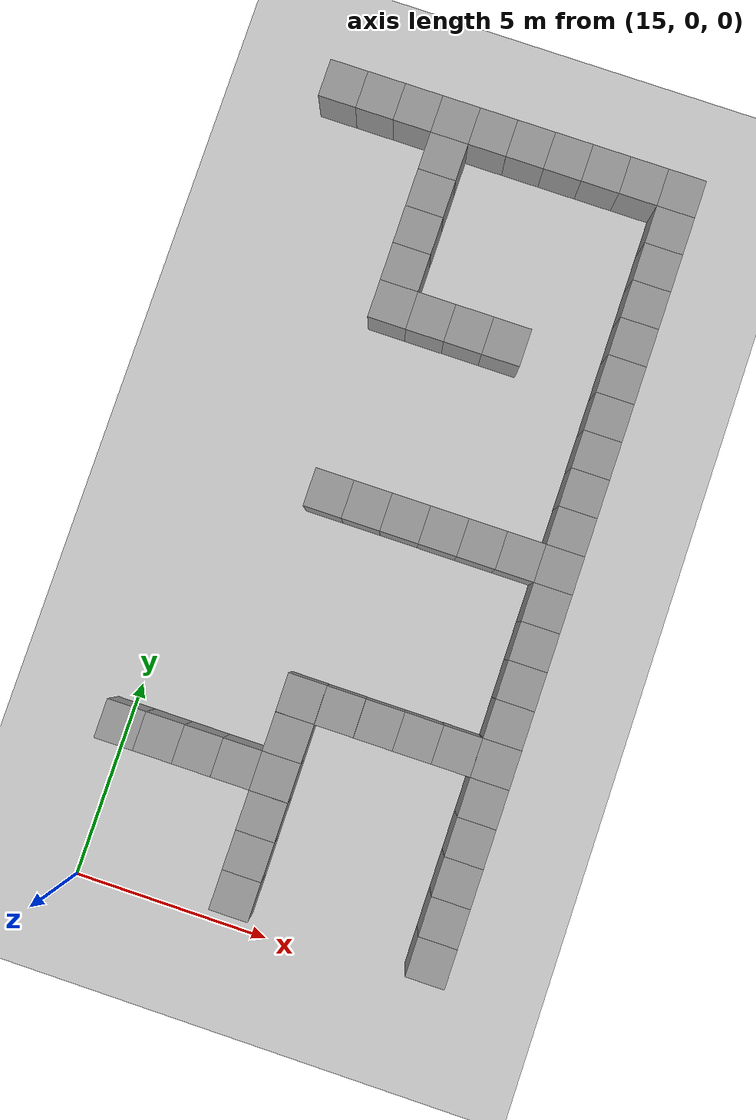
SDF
<sdf version="1.4">
 <world name="default">
  <model name="ground_plane">
   <static>1</static>
   <link name="link">
    <collision name="collision">
     <geometry><plane><normal>0 0 1</normal><size>100 100</size></plane></geometry>
     <surface><friction><ode><mu>100</mu><mu2>50</mu2></ode></friction></surface>
    </collision>
    <visual name="visual">
     <cast_shadows>0</cast_shadows>
     <geometry><plane><normal>0 0 1</normal><size>100 100</size></plane></geometry>
     <material>
      <script><uri>file://media/materials/scripts/gazebo.material</uri><name>Gazebo/Grey</name></script>
     </material>
    </visual>
    <velocity_decay><linear>0</linear><angular>0</angular></velocity_decay>
   </link>
  </model>
  <model name="unit_box_134">
   <pose>15 21 0.5 0 -0 1e-06</pose>
   <static>1</static>
   <link name="link">
    <inertial>
     <mass>1</mass>
     <inertia><ixx>1</ixx><ixy>0</ixy><ixz>0</ixz><iyy>1</iyy><iyz>0</iyz><izz>1</izz></inertia>
    </inertial>
    <collision name="collision"><geometry><box><size>1 1 2</size></box></geometry></collision>
    <visual name="visual">
     <geometry><box><size>1 1 2</size></box></geometry>
     <material>
      <script><uri>file://media/materials/scripts/gazebo.material</uri><name>Gazebo/Grey</name></script>
     </material>
    </visual>
    <velocity_decay><linear>0</linear><angular>0</angular></velocity_decay>
   </link>
   <static>0</static>
  </model>
  <model name="unit_box_135">
   <pose>16 21 0.5 0 -0 1e-06</pose>
   <static>1</static>
   <link name="link">
    <inertial>
     <mass>1</mass>
     <inertia><ixx>1</ixx><ixy>0</ixy><ixz>0</ixz><iyy>1</iyy><iyz>0</iyz><izz>1</izz></inertia>
    </inertial>
    <collision name="collision"><geometry><box><size>1 1 2</size></box></geometry></collision>
    <visual name="visual">
     <geometry><box><size>1 1 2</size></box></geometry>
     <material>
      <script><uri>file://media/materials/scripts/gazebo.material</uri><name>Gazebo/Grey</name></script>
     </material>
    </visual>
    <velocity_decay><linear>0</linear><angular>0</angular></velocity_decay>
   </link>
   <static>0</static>
  </model>
  <model name="unit_box_136">
   <pose>17 21 0.5 0 -0 3e-06</pose>
   <static>1</static>
   <link name="link">
    <inertial>
     <mass>1</mass>
     <inertia><ixx>1</ixx><ixy>0</ixy><ixz>0</ixz><iyy>1</iyy><iyz>0</iyz><izz>1</izz></inertia>
    </inertial>
    <collision name="collision"><geometry><box><size>1 1 2</size></box></geometry></collision>
    <visual name="visual">
     <geometry><box><size>1 1 2</size></box></geometry>
     <material>
      <script><uri>file://media/materials/scripts/gazebo.material</uri><name>Gazebo/Grey</name></script>
     </material>
    </visual>
    <velocity_decay><linear>0</linear><angular>0</angular></velocity_decay>
   </link>
   <static>0</static>
  </model>
  <model name="unit_box_137">
   <pose>18 21 0.5 0 -0 3e-06</pose>
   <static>1</static>
   <link name="link">
    <inertial>
     <mass>1</mass>
     <inertia><ixx>1</ixx><ixy>0</ixy><ixz>0</ixz><iyy>1</iyy><iyz>0</iyz><izz>1</izz></inertia>
    </inertial>
    <collision name="collision"><geometry><box><size>1 1 2</size></box></geometry></collision>
    <visual name="visual">
     <geometry><box><size>1 1 2</size></box></geometry>
     <material>
      <script><uri>file://media/materials/scripts/gazebo.material</uri><name>Gazebo/Grey</name></script>
     </material>
    </visual>
    <velocity_decay><linear>0</linear><angular>0</angular></velocity_decay>
   </link>
   <static>0</static>
  </model>
  <model name="unit_box_138">
   <pose>18 20 0.5 0 -0 5e-06</pose>
   <static>1</static>
   <link name="link">
    <inertial>
     <mass>1</mass>
     <inertia><ixx>1</ixx><ixy>0</ixy><ixz>0</ixz><iyy>1</iyy><iyz>0</iyz><izz>1</izz></inertia>
    </inertial>
    <collision name="collision"><geometry><box><size>1 1 2</size></box></geometry></collision>
    <visual name="visual">
     <geometry><box><size>1 1 2</size></box></geometry>
     <material>
      <script><uri>file://media/materials/scripts/gazebo.material</uri><name>Gazebo/Grey</name></script>
     </material>
    </visual>
    <velocity_decay><linear>0</linear><angular>0</angular></velocity_decay>
   </link>
   <static>0</static>
  </model>
  <model name="unit_box_139">
   <pose>18 19 0.5 0 -0 3e-06</pose>
   <static>1</static>
   <link name="link">
    <inertial>
     <mass>1</mass>
     <inertia><ixx>1</ixx><ixy>0</ixy><ixz>0</ixz><iyy>1</iyy><iyz>0</iyz><izz>1</izz></inertia>
    </inertial>
    <collision name="collision"><geometry><box><size>1 1 2</size></box></geometry></collision>
    <visual name="visual">
     <geometry><box><size>1 1 2</size></box></geometry>
     <material>
      <script><uri>file://media/materials/scripts/gazebo.material</uri><name>Gazebo/Grey</name></script>
     </material>
    </visual>
    <velocity_decay><linear>0</linear><angular>0</angular></velocity_decay>
   </link>
   <static>0</static>
  </model>
  <model name="unit_box_140">
   <pose>18 18 0.5 0 -0 2e-06</pose>
   <static>1</static>
   <link name="link">
    <inertial>
     <mass>1</mass>
     <inertia><ixx>1</ixx><ixy>0</ixy><ixz>0</ixz><iyy>1</iyy><iyz>0</iyz><izz>1</izz></inertia>
    </inertial>
    <collision name="collision"><geometry><box><size>1 1 2</size></box></geometry></collision>
    <visual name="visual">
     <geometry><box><size>1 1 2</size></box></geometry>
     <material>
      <script><uri>file://media/materials/scripts/gazebo.material</uri><name>Gazebo/Grey</name></script>
     </material>
    </visual>
    <velocity_decay><linear>0</linear><angular>0</angular></velocity_decay>
   </link>
   <static>0</static>
  </model>
  <model name="unit_box_141">
   <pose>18 17 0.5 0 -0 1e-06</pose>
   <static>1</static>
   <link name="link">
    <inertial>
     <mass>1</mass>
     <inertia><ixx>1</ixx><ixy>0</ixy><ixz>0</ixz><iyy>1</iyy><iyz>0</iyz><izz>1</izz></inertia>
    </inertial>
    <collision name="collision"><geometry><box><size>1 1 2</size></box></geometry></collision>
    <visual name="visual">
     <geometry><box><size>1 1 2</size></box></geometry>
     <material>
      <script><uri>file://media/materials/scripts/gazebo.material</uri><name>Gazebo/Grey</name></script>
     </material>
    </visual>
    <velocity_decay><linear>0</linear><angular>0</angular></velocity_decay>
   </link>
   <static>0</static>
  </model>
  <model name="unit_box_142">
   <pose>18 16 0.5 0 -0 1e-06</pose>
   <static>1</static>
   <link name="link">
    <inertial>
     <mass>1</mass>
     <inertia><ixx>1</ixx><ixy>0</ixy><ixz>0</ixz><iyy>1</iyy><iyz>0</iyz><izz>1</izz></inertia>
    </inertial>
    <collision name="collision"><geometry><box><size>1 1 2</size></box></geometry></collision>
    <visual name="visual">
     <geometry><box><size>1 1 2</size></box></geometry>
     <material>
      <script><uri>file://media/materials/scripts/gazebo.material</uri><name>Gazebo/Grey</name></script>
     </material>
    </visual>
    <velocity_decay><linear>0</linear><angular>0</angular></velocity_decay>
   </link>
   <static>0</static>
  </model>
  <model name="unit_box_143">
   <pose>19 16 0.5 0 -0 1e-06</pose>
   <static>1</static>
   <link name="link">
    <inertial>
     <mass>1</mass>
     <inertia><ixx>1</ixx><ixy>0</ixy><ixz>0</ixz><iyy>1</iyy><iyz>0</iyz><izz>1</izz></inertia>
    </inertial>
    <collision name="collision"><geometry><box><size>1 1 2</size></box></geometry></collision>
    <visual name="visual">
     <geometry><box><size>1 1 2</size></box></geometry>
     <material>
      <script><uri>file://media/materials/scripts/gazebo.material</uri><name>Gazebo/Grey</name></script>
     </material>
    </visual>
    <velocity_decay><linear>0</linear><angular>0</angular></velocity_decay>
   </link>
   <static>0</static>
  </model>
  <model name="unit_box_144">
   <pose>20 16 0.5 0 0 -1e-06</pose>
   <static>1</static>
   <link name="link">
    <inertial>
     <mass>1</mass>
     <inertia><ixx>1</ixx><ixy>0</ixy><ixz>0</ixz><iyy>1</iyy><iyz>0</iyz><izz>1</izz></inertia>
    </inertial>
    <collision name="collision"><geometry><box><size>1 1 2</size></box></geometry></collision>
    <visual name="visual">
     <geometry><box><size>1 1 2</size></box></geometry>
     <material>
      <script><uri>file://media/materials/scripts/gazebo.material</uri><name>Gazebo/Grey</name></script>
     </material>
    </visual>
    <velocity_decay><linear>0</linear><angular>0</angular></velocity_decay>
   </link>
   <static>0</static>
  </model>
  <model name="unit_box_145">
   <pose>21 16 0.5 0 0 -1e-06</pose>
   <static>1</static>
   <link name="link">
    <inertial>
     <mass>1</mass>
     <inertia><ixx>1</ixx><ixy>0</ixy><ixz>0</ixz><iyy>1</iyy><iyz>0</iyz><izz>1</izz></inertia>
    </inertial>
    <collision name="collision"><geometry><box><size>1 1 2</size></box></geometry></collision>
    <visual name="visual">
     <geometry><box><size>1 1 2</size></box></geometry>
     <material>
      <script><uri>file://media/materials/scripts/gazebo.material</uri><name>Gazebo/Grey</name></script>
     </material>
    </visual>
    <velocity_decay><linear>0</linear><angular>0</angular></velocity_decay>
   </link>
   <static>0</static>
  </model>
  <model name="unit_box_146">
   <pose>19 21 0.5 0 -0 3e-06</pose>
   <static>1</static>
   <link name="link">
    <inertial>
     <mass>1</mass>
     <inertia><ixx>1</ixx><ixy>0</ixy><ixz>0</ixz><iyy>1</iyy><iyz>0</iyz><izz>1</izz></inertia>
    </inertial>
    <collision name="collision"><geometry><box><size>1 1 2</size></box></geometry></collision>
    <visual name="visual">
     <geometry><box><size>1 1 2</size></box></geometry>
     <material>
      <script><uri>file://media/materials/scripts/gazebo.material</uri><name>Gazebo/Grey</name></script>
     </material>
    </visual>
    <velocity_decay><linear>0</linear><angular>0</angular></velocity_decay>
   </link>
   <static>0</static>
  </model>
  <model name="unit_box_147">
   <pose>20.0003 21 0.5 0 -0 1.4e-05</pose>
   <static>1</static>
   <link name="link">
    <inertial>
     <mass>1</mass>
     <inertia><ixx>1</ixx><ixy>0</ixy><ixz>0</ixz><iyy>1</iyy><iyz>0</iyz><izz>1</izz></inertia>
    </inertial>
    <collision name="collision"><geometry><box><size>1 1 2</size></box></geometry></collision>
    <visual name="visual">
     <geometry><box><size>1 1 2</size></box></geometry>
     <material>
      <script><uri>file://media/materials/scripts/gazebo.material</uri><name>Gazebo/Grey</name></script>
     </material>
    </visual>
    <velocity_decay><linear>0</linear><angular>0</angular></velocity_decay>
   </link>
   <static>0</static>
  </model>
  <model name="unit_box_148">
   <pose>21.0003 21 0.5 0 -0 3.3e-05</pose>
   <static>1</static>
   <link name="link">
    <inertial>
     <mass>1</mass>
     <inertia><ixx>1</ixx><ixy>0</ixy><ixz>0</ixz><iyy>1</iyy><iyz>0</iyz><izz>1</izz></inertia>
    </inertial>
    <collision name="collision"><geometry><box><size>1 1 2</size></box></geometry></collision>
    <visual name="visual">
     <geometry><box><size>1 1 2</size></box></geometry>
     <material>
      <script><uri>file://media/materials/scripts/gazebo.material</uri><name>Gazebo/Grey</name></script>
     </material>
    </visual>
    <velocity_decay><linear>0</linear><angular>0</angular></velocity_decay>
   </link>
   <static>0</static>
  </model>
  <model name="unit_box_150">
   <pose>22.0003 21.0001 0.5 0 -0 7.3e-05</pose>
   <static>1</static>
   <link name="link">
    <inertial>
     <mass>1</mass>
     <inertia><ixx>1</ixx><ixy>0</ixy><ixz>0</ixz><iyy>1</iyy><iyz>0</iyz><izz>1</izz></inertia>
    </inertial>
    <collision name="collision"><geometry><box><size>1 1 2</size></box></geometry></collision>
    <visual name="visual">
     <geometry><box><size>1 1 2</size></box></geometry>
     <material>
      <script><uri>file://media/materials/scripts/gazebo.material</uri><name>Gazebo/Grey</name></script>
     </material>
    </visual>
    <velocity_decay><linear>0</linear><angular>0</angular></velocity_decay>
   </link>
   <static>0</static>
  </model>
  <model name="unit_box_151">
   <pose>23.0004 21.0004 0.5 0 -0 0.000111</pose>
   <static>1</static>
   <link name="link">
    <inertial>
     <mass>1</mass>
     <inertia><ixx>1</ixx><ixy>0</ixy><ixz>0</ixz><iyy>1</iyy><iyz>0</iyz><izz>1</izz></inertia>
    </inertial>
    <collision name="collision"><geometry><box><size>1 1 2</size></box></geometry></collision>
    <visual name="visual">
     <geometry><box><size>1 1 2</size></box></geometry>
     <material>
      <script><uri>file://media/materials/scripts/gazebo.material</uri><name>Gazebo/Grey</name></script>
     </material>
    </visual>
    <velocity_decay><linear>0</linear><angular>0</angular></velocity_decay>
   </link>
   <static>0</static>
  </model>
  <model name="unit_box_152">
   <pose>24.0004 21.0005 0.5 0 -0 4.7e-05</pose>
   <static>1</static>
   <link name="link">
    <inertial>
     <mass>1</mass>
     <inertia><ixx>1</ixx><ixy>0</ixy><ixz>0</ixz><iyy>1</iyy><iyz>0</iyz><izz>1</izz></inertia>
    </inertial>
    <collision name="collision"><geometry><box><size>1 1 2</size></box></geometry></collision>
    <visual name="visual">
     <geometry><box><size>1 1 2</size></box></geometry>
     <material>
      <script><uri>file://media/materials/scripts/gazebo.material</uri><name>Gazebo/Grey</name></script>
     </material>
    </visual>
    <velocity_decay><linear>0</linear><angular>0</angular></velocity_decay>
   </link>
   <static>0</static>
  </model>
  <model name="unit_box_153">
   <pose>24.0001 20.0005 0.5 0 -0 2.5e-05</pose>
   <static>1</static>
   <link name="link">
    <inertial>
     <mass>1</mass>
     <inertia><ixx>1</ixx><ixy>0</ixy><ixz>0</ixz><iyy>1</iyy><iyz>0</iyz><izz>1</izz></inertia>
    </inertial>
    <collision name="collision"><geometry><box><size>1 1 2</size></box></geometry></collision>
    <visual name="visual">
     <geometry><box><size>1 1 2</size></box></geometry>
     <material>
      <script><uri>file://media/materials/scripts/gazebo.material</uri><name>Gazebo/Grey</name></script>
     </material>
    </visual>
    <velocity_decay><linear>0</linear><angular>0</angular></velocity_decay>
   </link>
   <static>0</static>
  </model>
  <model name="unit_box_154">
   <pose>24.0001 19.0005 0.5 0 -0 1.7e-05</pose>
   <static>1</static>
   <link name="link">
    <inertial>
     <mass>1</mass>
     <inertia><ixx>1</ixx><ixy>0</ixy><ixz>0</ixz><iyy>1</iyy><iyz>0</iyz><izz>1</izz></inertia>
    </inertial>
    <collision name="collision"><geometry><box><size>1 1 2</size></box></geometry></collision>
    <visual name="visual">
     <geometry><box><size>1 1 2</size></box></geometry>
     <material>
      <script><uri>file://media/materials/scripts/gazebo.material</uri><name>Gazebo/Grey</name></script>
     </material>
    </visual>
    <velocity_decay><linear>0</linear><angular>0</angular></velocity_decay>
   </link>
   <static>0</static>
  </model>
  <model name="unit_box_155">
   <pose>24.0001 18.0005 0.5 0 -0 1.3e-05</pose>
   <static>1</static>
   <link name="link">
    <inertial>
     <mass>1</mass>
     <inertia><ixx>1</ixx><ixy>0</ixy><ixz>0</ixz><iyy>1</iyy><iyz>0</iyz><izz>1</izz></inertia>
    </inertial>
    <collision name="collision"><geometry><box><size>1 1 2</size></box></geometry></collision>
    <visual name="visual">
     <geometry><box><size>1 1 2</size></box></geometry>
     <material>
      <script><uri>file://media/materials/scripts/gazebo.material</uri><name>Gazebo/Grey</name></script>
     </material>
    </visual>
    <velocity_decay><linear>0</linear><angular>0</angular></velocity_decay>
   </link>
   <static>0</static>
  </model>
  <model name="unit_box_156">
   <pose>24.0001 17.0005 0.5 0 -0 1.4e-05</pose>
   <static>1</static>
   <link name="link">
    <inertial>
     <mass>1</mass>
     <inertia><ixx>1</ixx><ixy>0</ixy><ixz>0</ixz><iyy>1</iyy><iyz>0</iyz><izz>1</izz></inertia>
    </inertial>
    <collision name="collision"><geometry><box><size>1 1 2</size></box></geometry></collision>
    <visual name="visual">
     <geometry><box><size>1 1 2</size></box></geometry>
     <material>
      <script><uri>file://media/materials/scripts/gazebo.material</uri><name>Gazebo/Grey</name></script>
     </material>
    </visual>
    <velocity_decay><linear>0</linear><angular>0</angular></velocity_decay>
   </link>
   <static>0</static>
  </model>
  <model name="unit_box_157">
   <pose>24.0002 16.0005 0.5 0 -0 1.5e-05</pose>
   <static>1</static>
   <link name="link">
    <inertial>
     <mass>1</mass>
     <inertia><ixx>1</ixx><ixy>0</ixy><ixz>0</ixz><iyy>1</iyy><iyz>0</iyz><izz>1</izz></inertia>
    </inertial>
    <collision name="collision"><geometry><box><size>1 1 2</size></box></geometry></collision>
    <visual name="visual">
     <geometry><box><size>1 1 2</size></box></geometry>
     <material>
      <script><uri>file://media/materials/scripts/gazebo.material</uri><name>Gazebo/Grey</name></script>
     </material>
    </visual>
    <velocity_decay><linear>0</linear><angular>0</angular></velocity_decay>
   </link>
   <static>0</static>
  </model>
  <model name="unit_box_158">
   <pose>24.0001 15.0005 0.5 0 -0 1.7e-05</pose>
   <static>1</static>
   <link name="link">
    <inertial>
     <mass>1</mass>
     <inertia><ixx>1</ixx><ixy>0</ixy><ixz>0</ixz><iyy>1</iyy><iyz>0</iyz><izz>1</izz></inertia>
    </inertial>
    <collision name="collision"><geometry><box><size>1 1 2</size></box></geometry></collision>
    <visual name="visual">
     <geometry><box><size>1 1 2</size></box></geometry>
     <material>
      <script><uri>file://media/materials/scripts/gazebo.material</uri><name>Gazebo/Grey</name></script>
     </material>
    </visual>
    <velocity_decay><linear>0</linear><angular>0</angular></velocity_decay>
   </link>
   <static>0</static>
  </model>
  <model name="unit_box_159">
   <pose>24 14.0005 0.5 0 -0 2e-05</pose>
   <static>1</static>
   <link name="link">
    <inertial>
     <mass>1</mass>
     <inertia><ixx>1</ixx><ixy>0</ixy><ixz>0</ixz><iyy>1</iyy><iyz>0</iyz><izz>1</izz></inertia>
    </inertial>
    <collision name="collision"><geometry><box><size>1 1 2</size></box></geometry></collision>
    <visual name="visual">
     <geometry><box><size>1 1 2</size></box></geometry>
     <material>
      <script><uri>file://media/materials/scripts/gazebo.material</uri><name>Gazebo/Grey</name></script>
     </material>
    </visual>
    <velocity_decay><linear>0</linear><angular>0</angular></velocity_decay>
   </link>
   <static>0</static>
  </model>
  <model name="unit_box_160">
   <pose>24 13.0005 0.5 0 -0 2.1e-05</pose>
   <static>1</static>
   <link name="link">
    <inertial>
     <mass>1</mass>
     <inertia><ixx>1</ixx><ixy>0</ixy><ixz>0</ixz><iyy>1</iyy><iyz>0</iyz><izz>1</izz></inertia>
    </inertial>
    <collision name="collision"><geometry><box><size>1 1 2</size></box></geometry></collision>
    <visual name="visual">
     <geometry><box><size>1 1 2</size></box></geometry>
     <material>
      <script><uri>file://media/materials/scripts/gazebo.material</uri><name>Gazebo/Grey</name></script>
     </material>
    </visual>
    <velocity_decay><linear>0</linear><angular>0</angular></velocity_decay>
   </link>
   <static>0</static>
  </model>
  <model name="unit_box_161">
   <pose>24.0001 12.0005 0.5 0 -0 2.2e-05</pose>
   <static>1</static>
   <link name="link">
    <inertial>
     <mass>1</mass>
     <inertia><ixx>1</ixx><ixy>0</ixy><ixz>0</ixz><iyy>1</iyy><iyz>0</iyz><izz>1</izz></inertia>
    </inertial>
    <collision name="collision"><geometry><box><size>1 1 2</size></box></geometry></collision>
    <visual name="visual">
     <geometry><box><size>1 1 2</size></box></geometry>
     <material>
      <script><uri>file://media/materials/scripts/gazebo.material</uri><name>Gazebo/Grey</name></script>
     </material>
    </visual>
    <velocity_decay><linear>0</linear><angular>0</angular></velocity_decay>
   </link>
   <static>0</static>
  </model>
  <model name="unit_box_162">
   <pose>24.0002 11.0004 0.5 0 -0 4e-05</pose>
   <static>1</static>
   <link name="link">
    <inertial>
     <mass>1</mass>
     <inertia><ixx>1</ixx><ixy>0</ixy><ixz>0</ixz><iyy>1</iyy><iyz>0</iyz><izz>1</izz></inertia>
    </inertial>
    <collision name="collision"><geometry><box><size>1 1 2</size></box></geometry></collision>
    <visual name="visual">
     <geometry><box><size>1 1 2</size></box></geometry>
     <material>
      <script><uri>file://media/materials/scripts/gazebo.material</uri><name>Gazebo/Grey</name></script>
     </material>
    </visual>
    <velocity_decay><linear>0</linear><angular>0</angular></velocity_decay>
   </link>
   <static>0</static>
  </model>
  <model name="unit_box_163">
   <pose>23 11 0.5 0 -0 9e-06</pose>
   <static>1</static>
   <link name="link">
    <inertial>
     <mass>1</mass>
     <inertia><ixx>1</ixx><ixy>0</ixy><ixz>0</ixz><iyy>1</iyy><iyz>0</iyz><izz>1</izz></inertia>
    </inertial>
    <collision name="collision"><geometry><box><size>1 1 2</size></box></geometry></collision>
    <visual name="visual">
     <geometry><box><size>1 1 2</size></box></geometry>
     <material>
      <script><uri>file://media/materials/scripts/gazebo.material</uri><name>Gazebo/Grey</name></script>
     </material>
    </visual>
    <velocity_decay><linear>0</linear><angular>0</angular></velocity_decay>
   </link>
   <static>0</static>
  </model>
  <model name="unit_box_164">
   <pose>22 11 0.5 0 -0 1.6e-05</pose>
   <static>1</static>
   <link name="link">
    <inertial>
     <mass>1</mass>
     <inertia><ixx>1</ixx><ixy>0</ixy><ixz>0</ixz><iyy>1</iyy><iyz>0</iyz><izz>1</izz></inertia>
    </inertial>
    <collision name="collision"><geometry><box><size>1 1 2</size></box></geometry></collision>
    <visual name="visual">
     <geometry><box><size>1 1 2</size></box></geometry>
     <material>
      <script><uri>file://media/materials/scripts/gazebo.material</uri><name>Gazebo/Grey</name></script>
     </material>
    </visual>
    <velocity_decay><linear>0</linear><angular>0</angular></velocity_decay>
   </link>
   <static>0</static>
  </model>
  <model name="unit_box_165">
   <pose>21 11 0.5 0 -0 1.6e-05</pose>
   <static>1</static>
   <link name="link">
    <inertial>
     <mass>1</mass>
     <inertia><ixx>1</ixx><ixy>0</ixy><ixz>0</ixz><iyy>1</iyy><iyz>0</iyz><izz>1</izz></inertia>
    </inertial>
    <collision name="collision"><geometry><box><size>1 1 2</size></box></geometry></collision>
    <visual name="visual">
     <geometry><box><size>1 1 2</size></box></geometry>
     <material>
      <script><uri>file://media/materials/scripts/gazebo.material</uri><name>Gazebo/Grey</name></script>
     </material>
    </visual>
    <velocity_decay><linear>0</linear><angular>0</angular></velocity_decay>
   </link>
   <static>0</static>
  </model>
  <model name="unit_box_166">
   <pose>20 11 0.5 0 -0 5e-06</pose>
   <static>1</static>
   <link name="link">
    <inertial>
     <mass>1</mass>
     <inertia><ixx>1</ixx><ixy>0</ixy><ixz>0</ixz><iyy>1</iyy><iyz>0</iyz><izz>1</izz></inertia>
    </inertial>
    <collision name="collision"><geometry><box><size>1 1 2</size></box></geometry></collision>
    <visual name="visual">
     <geometry><box><size>1 1 2</size></box></geometry>
     <material>
      <script><uri>file://media/materials/scripts/gazebo.material</uri><name>Gazebo/Grey</name></script>
     </material>
    </visual>
    <velocity_decay><linear>0</linear><angular>0</angular></velocity_decay>
   </link>
   <static>0</static>
  </model>
  <model name="unit_box_167">
   <pose>19 11 0.5 0 -0 4e-06</pose>
   <static>1</static>
   <link name="link">
    <inertial>
     <mass>1</mass>
     <inertia><ixx>1</ixx><ixy>0</ixy><ixz>0</ixz><iyy>1</iyy><iyz>0</iyz><izz>1</izz></inertia>
    </inertial>
    <collision name="collision"><geometry><box><size>1 1 2</size></box></geometry></collision>
    <visual name="visual">
     <geometry><box><size>1 1 2</size></box></geometry>
     <material>
      <script><uri>file://media/materials/scripts/gazebo.material</uri><name>Gazebo/Grey</name></script>
     </material>
    </visual>
    <velocity_decay><linear>0</linear><angular>0</angular></velocity_decay>
   </link>
   <static>0</static>
  </model>
  <model name="unit_box_168">
   <pose>18 11 0.5 0 -0 3e-06</pose>
   <static>1</static>
   <link name="link">
    <inertial>
     <mass>1</mass>
     <inertia><ixx>1</ixx><ixy>0</ixy><ixz>0</ixz><iyy>1</iyy><iyz>0</iyz><izz>1</izz></inertia>
    </inertial>
    <collision name="collision"><geometry><box><size>1 1 2</size></box></geometry></collision>
    <visual name="visual">
     <geometry><box><size>1 1 2</size></box></geometry>
     <material>
      <script><uri>file://media/materials/scripts/gazebo.material</uri><name>Gazebo/Grey</name></script>
     </material>
    </visual>
    <velocity_decay><linear>0</linear><angular>0</angular></velocity_decay>
   </link>
   <static>0</static>
  </model>
  <model name="unit_box_177">
   <pose>14.9974 4.00019 0.5 0 -0 0.000926</pose>
   <static>1</static>
   <link name="link">
    <inertial>
     <mass>1</mass>
     <inertia><ixx>1</ixx><ixy>0</ixy><ixz>0</ixz><iyy>1</iyy><iyz>0</iyz><izz>1</izz></inertia>
    </inertial>
    <collision name="collision"><geometry><box><size>1 1 2</size></box></geometry></collision>
    <visual name="visual">
     <geometry><box><size>1 1 2</size></box></geometry>
     <material>
      <script><uri>file://media/materials/scripts/gazebo.material</uri><name>Gazebo/Grey</name></script>
     </material>
    </visual>
    <velocity_decay><linear>0</linear><angular>0</angular></velocity_decay>
   </link>
   <static>0</static>
  </model>
  <model name="unit_box_178">
   <pose>15.9974 4.00015 0.5 0 -0 0.001009</pose>
   <static>1</static>
   <link name="link">
    <inertial>
     <mass>1</mass>
     <inertia><ixx>1</ixx><ixy>0</ixy><ixz>0</ixz><iyy>1</iyy><iyz>0</iyz><izz>1</izz></inertia>
    </inertial>
    <collision name="collision"><geometry><box><size>1 1 2</size></box></geometry></collision>
    <visual name="visual">
     <geometry><box><size>1 1 2</size></box></geometry>
     <material>
      <script><uri>file://media/materials/scripts/gazebo.material</uri><name>Gazebo/Grey</name></script>
     </material>
    </visual>
    <velocity_decay><linear>0</linear><angular>0</angular></velocity_decay>
   </link>
   <static>0</static>
  </model>
  <model name="unit_box_179">
   <pose>16.9975 3.99993 0.5 0 -0 0.001188</pose>
   <static>1</static>
   <link name="link">
    <inertial>
     <mass>1</mass>
     <inertia><ixx>1</ixx><ixy>0</ixy><ixz>0</ixz><iyy>1</iyy><iyz>0</iyz><izz>1</izz></inertia>
    </inertial>
    <collision name="collision"><geometry><box><size>1 1 2</size></box></geometry></collision>
    <visual name="visual">
     <geometry><box><size>1 1 2</size></box></geometry>
     <material>
      <script><uri>file://media/materials/scripts/gazebo.material</uri><name>Gazebo/Grey</name></script>
     </material>
    </visual>
    <velocity_decay><linear>0</linear><angular>0</angular></velocity_decay>
   </link>
   <static>0</static>
  </model>
  <model name="unit_box_180">
   <pose>17.9977 4.00059 0.5 0 -0 0.001689</pose>
   <static>1</static>
   <link name="link">
    <inertial>
     <mass>1</mass>
     <inertia><ixx>1</ixx><ixy>0</ixy><ixz>0</ixz><iyy>1</iyy><iyz>0</iyz><izz>1</izz></inertia>
    </inertial>
    <collision name="collision"><geometry><box><size>1 1 2</size></box></geometry></collision>
    <visual name="visual">
     <geometry><box><size>1 1 2</size></box></geometry>
     <material>
      <script><uri>file://media/materials/scripts/gazebo.material</uri><name>Gazebo/Grey</name></script>
     </material>
    </visual>
    <velocity_decay><linear>0</linear><angular>0</angular></velocity_decay>
   </link>
   <static>0</static>
  </model>
  <model name="unit_box_181">
   <pose>18.9984 4.00065 0.5 0 -0 0.002125</pose>
   <static>1</static>
   <link name="link">
    <inertial>
     <mass>1</mass>
     <inertia><ixx>1</ixx><ixy>0</ixy><ixz>0</ixz><iyy>1</iyy><iyz>0</iyz><izz>1</izz></inertia>
    </inertial>
    <collision name="collision"><geometry><box><size>1 1 2</size></box></geometry></collision>
    <visual name="visual">
     <geometry><box><size>1 1 2</size></box></geometry>
     <material>
      <script><uri>file://media/materials/scripts/gazebo.material</uri><name>Gazebo/Grey</name></script>
     </material>
    </visual>
    <velocity_decay><linear>0</linear><angular>0</angular></velocity_decay>
   </link>
   <static>0</static>
  </model>
  <model name="unit_box_183">
   <pose>18.996 5.00065 0.5 0 -0 0.002125</pose>
   <static>1</static>
   <link name="link">
    <inertial>
     <mass>1</mass>
     <inertia><ixx>1</ixx><ixy>0</ixy><ixz>0</ixz><iyy>1</iyy><iyz>0</iyz><izz>1</izz></inertia>
    </inertial>
    <collision name="collision"><geometry><box><size>1 1 2</size></box></geometry></collision>
    <visual name="visual">
     <geometry><box><size>1 1 2</size></box></geometry>
     <material>
      <script><uri>file://media/materials/scripts/gazebo.material</uri><name>Gazebo/Grey</name></script>
     </material>
    </visual>
    <velocity_decay><linear>0</linear><angular>0</angular></velocity_decay>
   </link>
   <static>0</static>
  </model>
  <model name="unit_box_184">
   <pose>18.9921 6.00258 0.5 0 -0 0.000734</pose>
   <static>1</static>
   <link name="link">
    <inertial>
     <mass>1</mass>
     <inertia><ixx>1</ixx><ixy>0</ixy><ixz>0</ixz><iyy>1</iyy><iyz>0</iyz><izz>1</izz></inertia>
    </inertial>
    <collision name="collision"><geometry><box><size>1 1 2</size></box></geometry></collision>
    <visual name="visual">
     <geometry><box><size>1 1 2</size></box></geometry>
     <material>
      <script><uri>file://media/materials/scripts/gazebo.material</uri><name>Gazebo/Grey</name></script>
     </material>
    </visual>
    <velocity_decay><linear>0</linear><angular>0</angular></velocity_decay>
   </link>
   <static>0</static>
  </model>
  <model name="unit_box_185">
   <pose>21.0007 5.99621 0.5 0 -0 0.00019</pose>
   <static>1</static>
   <link name="link">
    <inertial>
     <mass>1</mass>
     <inertia><ixx>1</ixx><ixy>0</ixy><ixz>0</ixz><iyy>1</iyy><iyz>0</iyz><izz>1</izz></inertia>
    </inertial>
    <collision name="collision"><geometry><box><size>1 1 2</size></box></geometry></collision>
    <visual name="visual">
     <geometry><box><size>1 1 2</size></box></geometry>
     <material>
      <script><uri>file://media/materials/scripts/gazebo.material</uri><name>Gazebo/Grey</name></script>
     </material>
    </visual>
    <velocity_decay><linear>0</linear><angular>0</angular></velocity_decay>
   </link>
   <static>0</static>
  </model>
  <model name="unit_box_186">
   <pose>22.0007 5.99697 0.5 0 -0 0.000178</pose>
   <static>1</static>
   <link name="link">
    <inertial>
     <mass>1</mass>
     <inertia><ixx>1</ixx><ixy>0</ixy><ixz>0</ixz><iyy>1</iyy><iyz>0</iyz><izz>1</izz></inertia>
    </inertial>
    <collision name="collision"><geometry><box><size>1 1 2</size></box></geometry></collision>
    <visual name="visual">
     <geometry><box><size>1 1 2</size></box></geometry>
     <material>
      <script><uri>file://media/materials/scripts/gazebo.material</uri><name>Gazebo/Grey</name></script>
     </material>
    </visual>
    <velocity_decay><linear>0</linear><angular>0</angular></velocity_decay>
   </link>
   <static>0</static>
  </model>
  <model name="unit_box_187">
   <pose>23.0007 5.99842 0.5 0 -0 0.000172</pose>
   <static>1</static>
   <link name="link">
    <inertial>
     <mass>1</mass>
     <inertia><ixx>1</ixx><ixy>0</ixy><ixz>0</ixz><iyy>1</iyy><iyz>0</iyz><izz>1</izz></inertia>
    </inertial>
    <collision name="collision"><geometry><box><size>1 1 2</size></box></geometry></collision>
    <visual name="visual">
     <geometry><box><size>1 1 2</size></box></geometry>
     <material>
      <script><uri>file://media/materials/scripts/gazebo.material</uri><name>Gazebo/Grey</name></script>
     </material>
    </visual>
    <velocity_decay><linear>0</linear><angular>0</angular></velocity_decay>
   </link>
   <static>0</static>
  </model>
  <model name="unit_box_188">
   <pose>24.0001 10.0004 0.5 0 -0 3.9e-05</pose>
   <static>1</static>
   <link name="link">
    <inertial>
     <mass>1</mass>
     <inertia><ixx>1</ixx><ixy>0</ixy><ixz>0</ixz><iyy>1</iyy><iyz>0</iyz><izz>1</izz></inertia>
    </inertial>
    <collision name="collision"><geometry><box><size>1 1 2</size></box></geometry></collision>
    <visual name="visual">
     <geometry><box><size>1 1 2</size></box></geometry>
     <material>
      <script><uri>file://media/materials/scripts/gazebo.material</uri><name>Gazebo/Grey</name></script>
     </material>
    </visual>
    <velocity_decay><linear>0</linear><angular>0</angular></velocity_decay>
   </link>
   <static>0</static>
  </model>
  <model name="unit_box_189">
   <pose>24.0001 9.00043 0.5 0 -0 4.6e-05</pose>
   <static>1</static>
   <link name="link">
    <inertial>
     <mass>1</mass>
     <inertia><ixx>1</ixx><ixy>0</ixy><ixz>0</ixz><iyy>1</iyy><iyz>0</iyz><izz>1</izz></inertia>
    </inertial>
    <collision name="collision"><geometry><box><size>1 1 2</size></box></geometry></collision>
    <visual name="visual">
     <geometry><box><size>1 1 2</size></box></geometry>
     <material>
      <script><uri>file://media/materials/scripts/gazebo.material</uri><name>Gazebo/Grey</name></script>
     </material>
    </visual>
    <velocity_decay><linear>0</linear><angular>0</angular></velocity_decay>
   </link>
   <static>0</static>
  </model>
  <model name="unit_box_190">
   <pose>24.0001 8.00042 0.5 0 -0 3.9e-05</pose>
   <static>1</static>
   <link name="link">
    <inertial>
     <mass>1</mass>
     <inertia><ixx>1</ixx><ixy>0</ixy><ixz>0</ixz><iyy>1</iyy><iyz>0</iyz><izz>1</izz></inertia>
    </inertial>
    <collision name="collision"><geometry><box><size>1 1 2</size></box></geometry></collision>
    <visual name="visual">
     <geometry><box><size>1 1 2</size></box></geometry>
     <material>
      <script><uri>file://media/materials/scripts/gazebo.material</uri><name>Gazebo/Grey</name></script>
     </material>
    </visual>
    <velocity_decay><linear>0</linear><angular>0</angular></velocity_decay>
   </link>
   <static>0</static>
  </model>
  <model name="unit_box_191">
   <pose>24.0002 7.00042 0.5 0 -0 3.8e-05</pose>
   <static>1</static>
   <link name="link">
    <inertial>
     <mass>1</mass>
     <inertia><ixx>1</ixx><ixy>0</ixy><ixz>0</ixz><iyy>1</iyy><iyz>0</iyz><izz>1</izz></inertia>
    </inertial>
    <collision name="collision"><geometry><box><size>1 1 2</size></box></geometry></collision>
    <visual name="visual">
     <geometry><box><size>1 1 2</size></box></geometry>
     <material>
      <script><uri>file://media/materials/scripts/gazebo.material</uri><name>Gazebo/Grey</name></script>
     </material>
    </visual>
    <velocity_decay><linear>0</linear><angular>0</angular></velocity_decay>
   </link>
   <static>0</static>
  </model>
  <model name="unit_box_192">
   <pose>24.0014 6.00042 0.5 0 -0 3.8e-05</pose>
   <static>1</static>
   <link name="link">
    <inertial>
     <mass>1</mass>
     <inertia><ixx>1</ixx><ixy>0</ixy><ixz>0</ixz><iyy>1</iyy><iyz>0</iyz><izz>1</izz></inertia>
    </inertial>
    <collision name="collision"><geometry><box><size>1 1 2</size></box></geometry></collision>
    <visual name="visual">
     <geometry><box><size>1 1 2</size></box></geometry>
     <material>
      <script><uri>file://media/materials/scripts/gazebo.material</uri><name>Gazebo/Grey</name></script>
     </material>
    </visual>
    <velocity_decay><linear>0</linear><angular>0</angular></velocity_decay>
   </link>
   <static>0</static>
  </model>
  <model name="unit_box_193">
   <pose>19.996 5.99787 0.5 0 -0 0.000185</pose>
   <static>1</static>
   <link name="link">
    <inertial>
     <mass>1</mass>
     <inertia><ixx>1</ixx><ixy>0</ixy><ixz>0</ixz><iyy>1</iyy><iyz>0</iyz><izz>1</izz></inertia>
    </inertial>
    <collision name="collision"><geometry><box><size>1 1 2</size></box></geometry></collision>
    <visual name="visual">
     <geometry><box><size>1 1 2</size></box></geometry>
     <material>
      <script><uri>file://media/materials/scripts/gazebo.material</uri><name>Gazebo/Grey</name></script>
     </material>
    </visual>
    <velocity_decay><linear>0</linear><angular>0</angular></velocity_decay>
   </link>
   <static>0</static>
  </model>
  <model name="unit_box_194">
   <pose>24.0008 5.00042 0.5 0 -0 3.8e-05</pose>
   <static>1</static>
   <link name="link">
    <inertial>
     <mass>1</mass>
     <inertia><ixx>1</ixx><ixy>0</ixy><ixz>0</ixz><iyy>1</iyy><iyz>0</iyz><izz>1</izz></inertia>
    </inertial>
    <collision name="collision"><geometry><box><size>1 1 2</size></box></geometry></collision>
    <visual name="visual">
     <geometry><box><size>1 1 2</size></box></geometry>
     <material>
      <script><uri>file://media/materials/scripts/gazebo.material</uri><name>Gazebo/Grey</name></script>
     </material>
    </visual>
    <velocity_decay><linear>0</linear><angular>0</angular></velocity_decay>
   </link>
   <static>0</static>
  </model>
  <model name="unit_box_195">
   <pose>24.0001 4.00041 0.5 0 -0 5.9e-05</pose>
   <static>1</static>
   <link name="link">
    <inertial>
     <mass>1</mass>
     <inertia><ixx>1</ixx><ixy>0</ixy><ixz>0</ixz><iyy>1</iyy><iyz>0</iyz><izz>1</izz></inertia>
    </inertial>
    <collision name="collision"><geometry><box><size>1 1 2</size></box></geometry></collision>
    <visual name="visual">
     <geometry><box><size>1 1 2</size></box></geometry>
     <material>
      <script><uri>file://media/materials/scripts/gazebo.material</uri><name>Gazebo/Grey</name></script>
     </material>
    </visual>
    <velocity_decay><linear>0</linear><angular>0</angular></velocity_decay>
   </link>
   <static>0</static>
  </model>
  <model name="unit_box_196">
   <pose>24 3.00041 0.5 0 -0 5.5e-05</pose>
   <static>1</static>
   <link name="link">
    <inertial>
     <mass>1</mass>
     <inertia><ixx>1</ixx><ixy>0</ixy><ixz>0</ixz><iyy>1</iyy><iyz>0</iyz><izz>1</izz></inertia>
    </inertial>
    <collision name="collision"><geometry><box><size>1 1 2</size></box></geometry></collision>
    <visual name="visual">
     <geometry><box><size>1 1 2</size></box></geometry>
     <material>
      <script><uri>file://media/materials/scripts/gazebo.material</uri><name>Gazebo/Grey</name></script>
     </material>
    </visual>
    <velocity_decay><linear>0</linear><angular>0</angular></velocity_decay>
   </link>
   <static>0</static>
  </model>
  <model name="unit_box_197">
   <pose>23.9999 2.00038 0.5 0 -0 6.3e-05</pose>
   <static>1</static>
   <link name="link">
    <inertial>
     <mass>1</mass>
     <inertia><ixx>1</ixx><ixy>0</ixy><ixz>0</ixz><iyy>1</iyy><iyz>0</iyz><izz>1</izz></inertia>
    </inertial>
    <collision name="collision"><geometry><box><size>1 1 2</size></box></geometry></collision>
    <visual name="visual">
     <geometry><box><size>1 1 2</size></box></geometry>
     <material>
      <script><uri>file://media/materials/scripts/gazebo.material</uri><name>Gazebo/Grey</name></script>
     </material>
    </visual>
    <velocity_decay><linear>0</linear><angular>0</angular></velocity_decay>
   </link>
   <static>0</static>
  </model>
  <model name="unit_box_198">
   <pose>23.9999 1.00035 0.5 0 -0 7.1e-05</pose>
   <static>1</static>
   <link name="link">
    <inertial>
     <mass>1</mass>
     <inertia><ixx>1</ixx><ixy>0</ixy><ixz>0</ixz><iyy>1</iyy><iyz>0</iyz><izz>1</izz></inertia>
    </inertial>
    <collision name="collision"><geometry><box><size>1 1 2</size></box></geometry></collision>
    <visual name="visual">
     <geometry><box><size>1 1 2</size></box></geometry>
     <material>
      <script><uri>file://media/materials/scripts/gazebo.material</uri><name>Gazebo/Grey</name></script>
     </material>
    </visual>
    <velocity_decay><linear>0</linear><angular>0</angular></velocity_decay>
   </link>
   <static>0</static>
  </model>
  <model name="unit_box_200">
   <pose>19 2.9997 0.5 0 -0 0.000228</pose>
   <static>1</static>
   <link name="link">
    <inertial>
     <mass>1</mass>
     <inertia><ixx>1</ixx><ixy>0</ixy><ixz>0</ixz><iyy>1</iyy><iyz>0</iyz><izz>1</izz></inertia>
    </inertial>
    <collision name="collision"><geometry><box><size>1 1 2</size></box></geometry></collision>
    <visual name="visual">
     <geometry><box><size>1 1 2</size></box></geometry>
     <material>
      <script><uri>file://media/materials/scripts/gazebo.material</uri><name>Gazebo/Grey</name></script>
     </material>
    </visual>
    <velocity_decay><linear>0</linear><angular>0</angular></velocity_decay>
   </link>
   <static>0</static>
  </model>
  <model name="unit_box_201">
   <pose>19 1.99966 0.5 0 -0 0.000143</pose>
   <static>1</static>
   <link name="link">
    <inertial>
     <mass>1</mass>
     <inertia><ixx>1</ixx><ixy>0</ixy><ixz>0</ixz><iyy>1</iyy><iyz>0</iyz><izz>1</izz></inertia>
    </inertial>
    <collision name="collision"><geometry><box><size>1 1 2</size></box></geometry></collision>
    <visual name="visual">
     <geometry><box><size>1 1 2</size></box></geometry>
     <material>
      <script><uri>file://media/materials/scripts/gazebo.material</uri><name>Gazebo/Grey</name></script>
     </material>
    </visual>
    <velocity_decay><linear>0</linear><angular>0</angular></velocity_decay>
   </link>
   <static>0</static>
  </model>
  <model name="unit_box_202">
   <pose>19 0.999639 0.5 0 -0 0.00011</pose>
   <static>1</static>
   <link name="link">
    <inertial>
     <mass>1</mass>
     <inertia><ixx>1</ixx><ixy>0</ixy><ixz>0</ixz><iyy>1</iyy><iyz>0</iyz><izz>1</izz></inertia>
    </inertial>
    <collision name="collision"><geometry><box><size>1 1 2</size></box></geometry></collision>
    <visual name="visual">
     <geometry><box><size>1 1 2</size></box></geometry>
     <material>
      <script><uri>file://media/materials/scripts/gazebo.material</uri><name>Gazebo/Grey</name></script>
     </material>
    </visual>
    <velocity_decay><linear>0</linear><angular>0</angular></velocity_decay>
   </link>
   <static>0</static>
  </model>
 </world>
</sdf>
